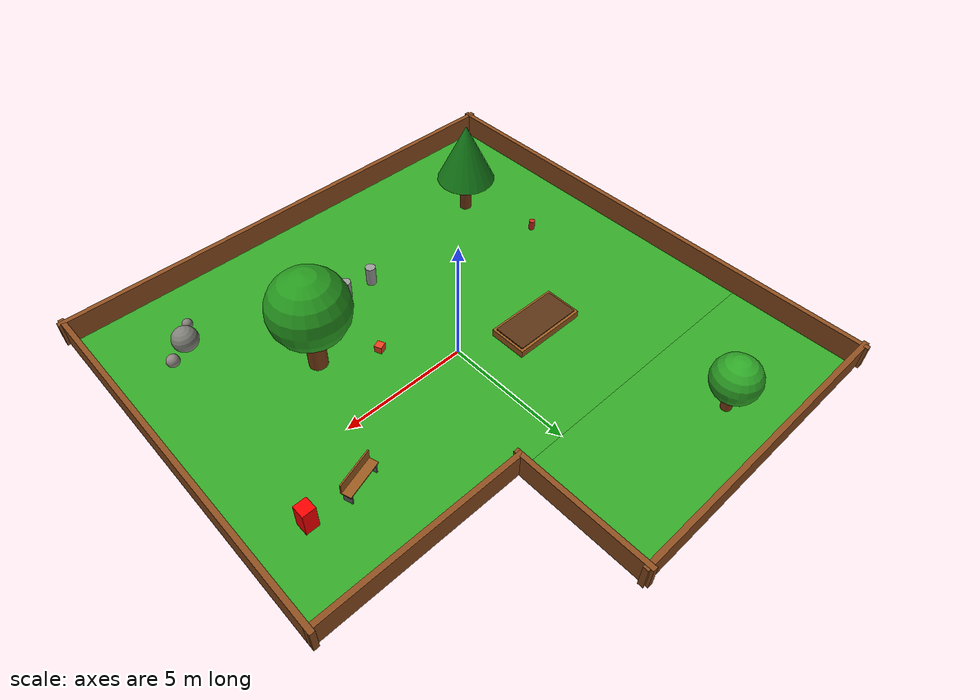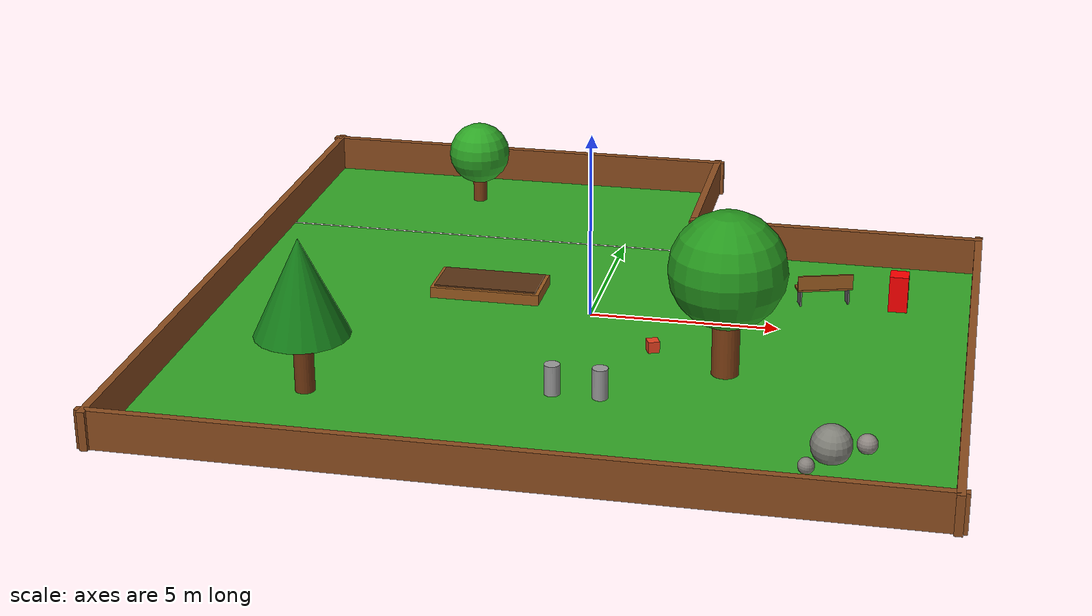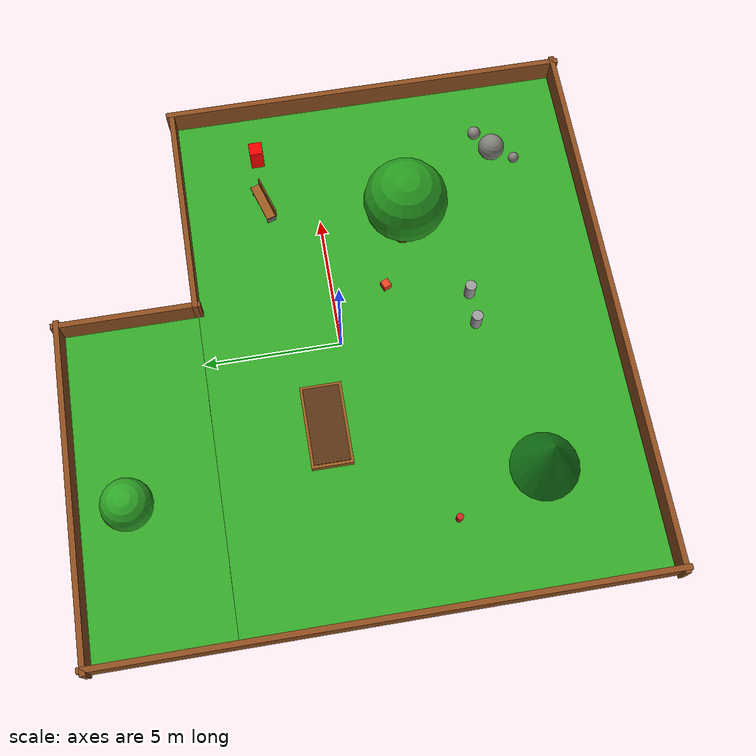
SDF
<?xml version="1.0" ?>
<sdf version="1.8">
  <world name="complex_lawn">
    <!-- Fast-forward simulation: run at 3x real-time to speed up testing but save CPU -->
    <physics name="1ms" type="ignored">
      <max_step_size>0.001</max_step_size>
      <real_time_factor>3.0</real_time_factor>
    </physics>

    <spherical_coordinates>
      <surface_model>EARTH_WGS84</surface_model>
      <world_frame_orientation>ENU</world_frame_orientation>
      <latitude_deg>0.0</latitude_deg>
      <longitude_deg>0.0</longitude_deg>
      <elevation>0.0</elevation>
      <heading_deg>0.0</heading_deg>
    </spherical_coordinates>

    <light type="directional" name="sun">
      <cast_shadows>true</cast_shadows>
      <pose>0 0 10 0 0 0</pose>
      <diffuse>0.85 0.85 0.8 1</diffuse>
      <specular>0.3 0.3 0.3 1</specular>
      <direction>-0.5 0.1 -0.9</direction>
    </light>

    <!-- GROUND: L-shaped lawn                                        -->
    <!-- Main rect: X[-10,10] Y[-10,5] = 20x15m                      -->
    <!-- Extension: X[-10,2] Y[5,10]   = 12x5m                       -->
    <!-- Total: L-shape, robot starts at (0,0)                        -->

    <!-- Main ground section -->
    <model name="ground_main">
      <static>true</static>
      <pose>0 -2.5 0 0 0 0</pose>
      <link name="link">
        <collision name="collision">
          <geometry><plane><normal>0 0 1</normal><size>20 15</size></plane></geometry>
        </collision>
        <visual name="visual">
          <geometry><plane><normal>0 0 1</normal><size>20 15</size></plane></geometry>
          <material>
            <ambient>0.15 0.55 0.1 1</ambient>
            <diffuse>0.2 0.65 0.15 1</diffuse>
            <specular>0 0 0 0</specular>
          </material>
        </visual>
      </link>
    </model>

    <!-- Extension ground (upper-left arm of the L) -->
    <model name="ground_extension">
      <static>true</static>
      <pose>-4 7.5 0 0 0 0</pose>
      <link name="link">
        <collision name="collision">
          <geometry><plane><normal>0 0 1</normal><size>12 5</size></plane></geometry>
        </collision>
        <visual name="visual">
          <geometry><plane><normal>0 0 1</normal><size>12 5</size></plane></geometry>
          <material>
            <ambient>0.15 0.55 0.1 1</ambient>
            <diffuse>0.2 0.65 0.15 1</diffuse>
            <specular>0 0 0 0</specular>
          </material>
        </visual>
      </link>
    </model>

    <!-- BOUNDARY WALLS: L-shaped perimeter                           -->

    <!-- South wall: full width X[-10,10] at Y=-10 -->
    <model name="wall_south">
      <static>true</static>
      <pose>0 -10 0.5 0 0 0</pose>
      <link name="link">
        <collision name="col"><geometry><box><size>20.4 0.2 1</size></box></geometry></collision>
        <visual name="vis"><geometry><box><size>20.4 0.2 1</size></box></geometry>
          <material><ambient>0.45 0.25 0.1 1</ambient><diffuse>0.55 0.3 0.12 1</diffuse></material>
        </visual>
      </link>
    </model>

    <!-- East wall: X=10, Y[-10,5] -->
    <model name="wall_east_lower">
      <static>true</static>
      <pose>10 -2.5 0.5 0 0 0</pose>
      <link name="link">
        <collision name="col"><geometry><box><size>0.2 15.4 1</size></box></geometry></collision>
        <visual name="vis"><geometry><box><size>0.2 15.4 1</size></box></geometry>
          <material><ambient>0.45 0.25 0.1 1</ambient><diffuse>0.55 0.3 0.12 1</diffuse></material>
        </visual>
      </link>
    </model>

    <!-- North-east wall: Y=5, X[2,10] (inner corner of L) -->
    <model name="wall_inner_north">
      <static>true</static>
      <pose>6 5 0.5 0 0 0</pose>
      <link name="link">
        <collision name="col"><geometry><box><size>8.2 0.2 1</size></box></geometry></collision>
        <visual name="vis"><geometry><box><size>8.2 0.2 1</size></box></geometry>
          <material><ambient>0.45 0.25 0.1 1</ambient><diffuse>0.55 0.3 0.12 1</diffuse></material>
        </visual>
      </link>
    </model>

    <!-- Inner east wall of extension: X=2, Y[5,10] -->
    <model name="wall_inner_east">
      <static>true</static>
      <pose>2 7.5 0.5 0 0 0</pose>
      <link name="link">
        <collision name="col"><geometry><box><size>0.2 5.4 1</size></box></geometry></collision>
        <visual name="vis"><geometry><box><size>0.2 5.4 1</size></box></geometry>
          <material><ambient>0.45 0.25 0.1 1</ambient><diffuse>0.55 0.3 0.12 1</diffuse></material>
        </visual>
      </link>
    </model>

    <!-- Top wall of extension: Y=10, X[-10,2] -->
    <model name="wall_north">
      <static>true</static>
      <pose>-4 10 0.5 0 0 0</pose>
      <link name="link">
        <collision name="col"><geometry><box><size>12.4 0.2 1</size></box></geometry></collision>
        <visual name="vis"><geometry><box><size>12.4 0.2 1</size></box></geometry>
          <material><ambient>0.45 0.25 0.1 1</ambient><diffuse>0.55 0.3 0.12 1</diffuse></material>
        </visual>
      </link>
    </model>

    <!-- West wall: X=-10, Y[-10,10] -->
    <model name="wall_west">
      <static>true</static>
      <pose>-10 0 0.5 0 0 0</pose>
      <link name="link">
        <collision name="col"><geometry><box><size>0.2 20.4 1</size></box></geometry></collision>
        <visual name="vis"><geometry><box><size>0.2 20.4 1</size></box></geometry>
          <material><ambient>0.45 0.25 0.1 1</ambient><diffuse>0.55 0.3 0.12 1</diffuse></material>
        </visual>
      </link>
    </model>

    <!-- OBSTACLES: Trees                                             -->

    <!-- Large oak tree in main area -->
    <model name="tree_oak">
      <static>true</static>
      <pose>4 -3 0 0 0 0</pose>
      <link name="link">
        <!-- Trunk -->
        <collision name="trunk_col"><geometry><cylinder><radius>0.35</radius><length>2.0</length></cylinder></geometry>
          <pose>0 0 1.0 0 0 0</pose>
        </collision>
        <visual name="trunk_vis"><geometry><cylinder><radius>0.35</radius><length>2.0</length></cylinder></geometry>
          <pose>0 0 1.0 0 0 0</pose>
          <material><ambient>0.4 0.2 0.05 1</ambient><diffuse>0.5 0.25 0.08 1</diffuse></material>
        </visual>
        <!-- Canopy -->
        <visual name="canopy_vis"><geometry><sphere><radius>1.5</radius></sphere></geometry>
          <pose>0 0 2.8 0 0 0</pose>
          <material><ambient>0.1 0.5 0.1 1</ambient><diffuse>0.15 0.6 0.12 1</diffuse></material>
        </visual>
      </link>
    </model>

    <!-- Pine tree near boundary -->
    <model name="tree_pine">
      <static>true</static>
      <pose>-6 -6 0 0 0 0</pose>
      <link name="link">
        <collision name="trunk_col"><geometry><cylinder><radius>0.25</radius><length>1.5</length></cylinder></geometry>
          <pose>0 0 0.75 0 0 0</pose>
        </collision>
        <visual name="trunk_vis"><geometry><cylinder><radius>0.25</radius><length>1.5</length></cylinder></geometry>
          <pose>0 0 0.75 0 0 0</pose>
          <material><ambient>0.35 0.18 0.05 1</ambient><diffuse>0.45 0.22 0.07 1</diffuse></material>
        </visual>
        <visual name="canopy_vis"><geometry><cone><radius>1.2</radius><length>2.5</length></cone></geometry>
          <pose>0 0 2.75 0 0 0</pose>
          <material><ambient>0.05 0.4 0.08 1</ambient><diffuse>0.08 0.5 0.1 1</diffuse></material>
        </visual>
      </link>
    </model>

    <!-- Small tree in the L extension -->
    <model name="tree_small">
      <static>true</static>
      <pose>-5 8 0 0 0 0</pose>
      <link name="link">
        <collision name="trunk_col"><geometry><cylinder><radius>0.2</radius><length>1.0</length></cylinder></geometry>
          <pose>0 0 0.5 0 0 0</pose>
        </collision>
        <visual name="trunk_vis"><geometry><cylinder><radius>0.2</radius><length>1.0</length></cylinder></geometry>
          <pose>0 0 0.5 0 0 0</pose>
          <material><ambient>0.4 0.2 0.05 1</ambient><diffuse>0.5 0.25 0.08 1</diffuse></material>
        </visual>
        <visual name="canopy_vis"><geometry><sphere><radius>0.9</radius></sphere></geometry>
          <pose>0 0 1.5 0 0 0</pose>
          <material><ambient>0.12 0.55 0.12 1</ambient><diffuse>0.18 0.65 0.15 1</diffuse></material>
        </visual>
      </link>
    </model>

    <!-- OBSTACLES: Rocks                                             -->

    <!-- Boulder cluster near east side -->
    <model name="rock_large">
      <static>true</static>
      <pose>7 -7 0.3 0.1 0.05 0.3</pose>
      <link name="link">
        <collision name="col"><geometry><sphere><radius>0.5</radius></sphere></geometry></collision>
        <visual name="vis"><geometry><sphere><radius>0.5</radius></sphere></geometry>
          <material><ambient>0.4 0.4 0.38 1</ambient><diffuse>0.5 0.5 0.47 1</diffuse></material>
        </visual>
      </link>
    </model>

    <model name="rock_small1">
      <static>true</static>
      <pose>7.8 -6.5 0.15 0 0 0.5</pose>
      <link name="link">
        <collision name="col"><geometry><sphere><radius>0.25</radius></sphere></geometry></collision>
        <visual name="vis"><geometry><sphere><radius>0.25</radius></sphere></geometry>
          <material><ambient>0.45 0.42 0.4 1</ambient><diffuse>0.55 0.52 0.5 1</diffuse></material>
        </visual>
      </link>
    </model>

    <model name="rock_small2">
      <static>true</static>
      <pose>6.5 -7.8 0.12 0.2 0 0.8</pose>
      <link name="link">
        <collision name="col"><geometry><sphere><radius>0.2</radius></sphere></geometry></collision>
        <visual name="vis"><geometry><sphere><radius>0.2</radius></sphere></geometry>
          <material><ambient>0.42 0.4 0.38 1</ambient><diffuse>0.52 0.5 0.48 1</diffuse></material>
        </visual>
      </link>
    </model>

    <!-- OBSTACLES: Garden Bed (raised, rectangular, must go around)  -->

    <model name="garden_bed">
      <static>true</static>
      <pose>-3 1 0.15 0 0 0</pose>
      <link name="link">
        <!-- Raised bed frame -->
        <collision name="col"><geometry><box><size>3.0 1.5 0.3</size></box></geometry></collision>
        <visual name="vis"><geometry><box><size>3.0 1.5 0.3</size></box></geometry>
          <material><ambient>0.5 0.3 0.1 1</ambient><diffuse>0.6 0.35 0.12 1</diffuse></material>
        </visual>
        <!-- Soil/plants on top -->
        <visual name="soil_vis"><geometry><box><size>2.8 1.3 0.05</size></box></geometry>
          <pose>0 0 0.17 0 0 0</pose>
          <material><ambient>0.3 0.15 0.05 1</ambient><diffuse>0.35 0.2 0.08 1</diffuse></material>
        </visual>
      </link>
    </model>

    <!-- OBSTACLES: Bench                                             -->

    <model name="bench">
      <static>true</static>
      <pose>6 2 0 0 0 0.3</pose>
      <link name="link">
        <!-- Seat -->
        <collision name="seat_col"><geometry><box><size>1.5 0.4 0.05</size></box></geometry>
          <pose>0 0 0.45 0 0 0</pose>
        </collision>
        <visual name="seat_vis"><geometry><box><size>1.5 0.4 0.05</size></box></geometry>
          <pose>0 0 0.45 0 0 0</pose>
          <material><ambient>0.5 0.3 0.1 1</ambient><diffuse>0.6 0.35 0.12 1</diffuse></material>
        </visual>
        <!-- Left leg -->
        <collision name="leg_l_col"><geometry><box><size>0.05 0.35 0.45</size></box></geometry>
          <pose>-0.65 0 0.225 0 0 0</pose>
        </collision>
        <visual name="leg_l_vis"><geometry><box><size>0.05 0.35 0.45</size></box></geometry>
          <pose>-0.65 0 0.225 0 0 0</pose>
          <material><ambient>0.3 0.3 0.3 1</ambient><diffuse>0.4 0.4 0.4 1</diffuse></material>
        </visual>
        <!-- Right leg -->
        <collision name="leg_r_col"><geometry><box><size>0.05 0.35 0.45</size></box></geometry>
          <pose>0.65 0 0.225 0 0 0</pose>
        </collision>
        <visual name="leg_r_vis"><geometry><box><size>0.05 0.35 0.45</size></box></geometry>
          <pose>0.65 0 0.225 0 0 0</pose>
          <material><ambient>0.3 0.3 0.3 1</ambient><diffuse>0.4 0.4 0.4 1</diffuse></material>
        </visual>
        <!-- Backrest -->
        <collision name="back_col"><geometry><box><size>1.5 0.05 0.4</size></box></geometry>
          <pose>0 -0.17 0.67 0 0 0</pose>
        </collision>
        <visual name="back_vis"><geometry><box><size>1.5 0.05 0.4</size></box></geometry>
          <pose>0 -0.17 0.67 0 0 0</pose>
          <material><ambient>0.5 0.3 0.1 1</ambient><diffuse>0.6 0.35 0.12 1</diffuse></material>
        </visual>
      </link>
    </model>

    <!-- OBSTACLES: Narrow passage (two pillars 1.2m apart)           -->
    <!-- Tests tight maneuvering                                      -->

    <model name="pillar_left">
      <static>true</static>
      <pose>0 -5 0.4 0 0 0</pose>
      <link name="link">
        <collision name="col"><geometry><cylinder><radius>0.2</radius><length>0.8</length></cylinder></geometry></collision>
        <visual name="vis"><geometry><cylinder><radius>0.2</radius><length>0.8</length></cylinder></geometry>
          <material><ambient>0.5 0.5 0.5 1</ambient><diffuse>0.6 0.6 0.6 1</diffuse></material>
        </visual>
      </link>
    </model>

    <model name="pillar_right">
      <static>true</static>
      <pose>1.2 -5 0.4 0 0 0</pose>
      <link name="link">
        <collision name="col"><geometry><cylinder><radius>0.2</radius><length>0.8</length></cylinder></geometry></collision>
        <visual name="vis"><geometry><cylinder><radius>0.2</radius><length>0.8</length></cylinder></geometry>
          <material><ambient>0.5 0.5 0.5 1</ambient><diffuse>0.6 0.6 0.6 1</diffuse></material>
        </visual>
      </link>
    </model>

    <!-- DYNAMIC: Movable toy box (for course correction testing)     -->

    <model name="toy_box">
      <pose>2 -2 0.15 0 0 0.4</pose>
      <link name="link">
        <inertial>
          <mass>5.0</mass>
          <inertia><ixx>0.04</ixx><ixy>0</ixy><ixz>0</ixz><iyy>0.04</iyy><iyz>0</iyz><izz>0.04</izz></inertia>
        </inertial>
        <collision name="col"><geometry><box><size>0.3 0.3 0.3</size></box></geometry></collision>
        <visual name="vis"><geometry><box><size>0.3 0.3 0.3</size></box></geometry>
          <material><ambient>0.8 0.2 0.1 1</ambient><diffuse>0.9 0.25 0.12 1</diffuse></material>
        </visual>
      </link>
    </model>

    <!-- DYNAMIC: Moving Obstacle (for testing Dynamic Avoidance)     -->

    <model name="moving_obstacle">
      <pose>8.0 2.0 0.5 0 0 0</pose>
      <link name="link">
        <kinematic>true</kinematic>
        <collision name="col">
          <geometry><box><size>0.5 0.5 1.0</size></box></geometry>
        </collision>
        <visual name="vis">
          <geometry><box><size>0.5 0.5 1.0</size></box></geometry>
          <material><ambient>1 0 0 1</ambient><diffuse>1 0 0 1</diffuse></material>
        </visual>
      </link>
      <plugin name="gz::sim::systems::Trajectory" filename="gz-sim-trajectory-system">
        <link_name>link</link_name>
        <loop>true</loop>
        <trajectory>
          <!-- Sweep left and right across the upper field every 20s -->
          <waypoint><time>0.0</time><pose>8.0 2.0 0.5 0 0 0</pose></waypoint>
          <waypoint><time>10.0</time><pose>-8.0 2.0 0.5 0 0 0</pose></waypoint>
          <waypoint><time>20.0</time><pose>8.0 2.0 0.5 0 0 0</pose></waypoint>
        </trajectory>
      </plugin>
    </model>

    <!-- DYNAMIC: Garden gnome (small obstacle)                       -->

    <model name="garden_gnome">
      <static>true</static>
      <pose>-7 -3 0.2 0 0 0</pose>
      <link name="link">
        <collision name="col"><geometry><cylinder><radius>0.12</radius><length>0.4</length></cylinder></geometry></collision>
        <visual name="vis"><geometry><cylinder><radius>0.12</radius><length>0.4</length></cylinder></geometry>
          <material><ambient>0.7 0.1 0.1 1</ambient><diffuse>0.8 0.15 0.12 1</diffuse></material>
        </visual>
      </link>
    </model>

  </world>
</sdf>
